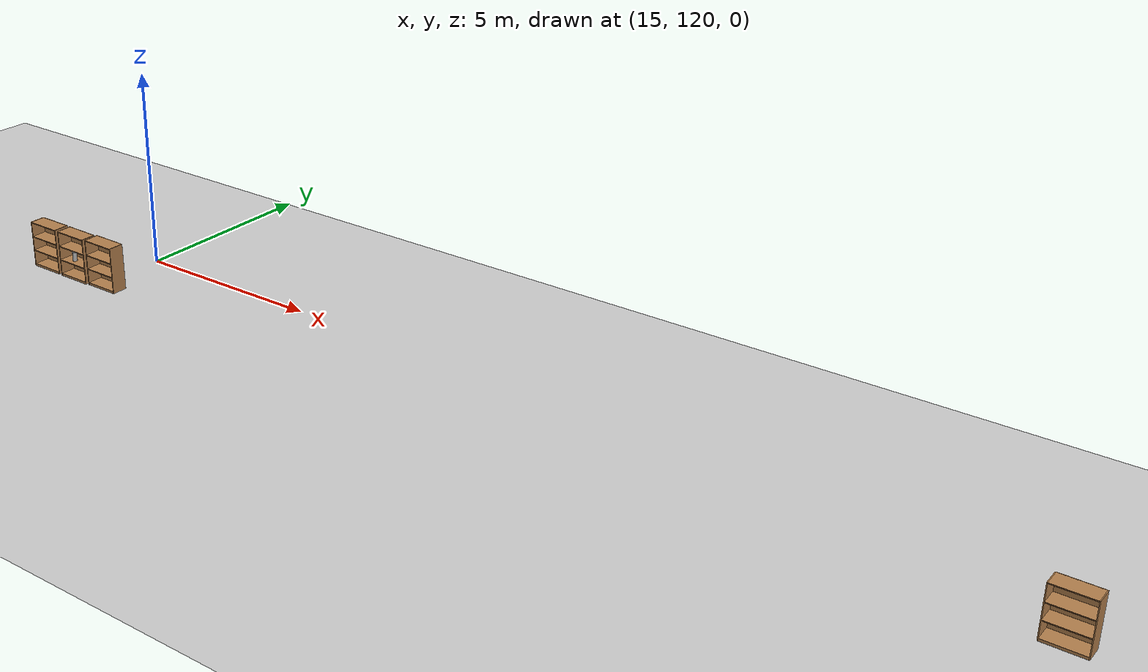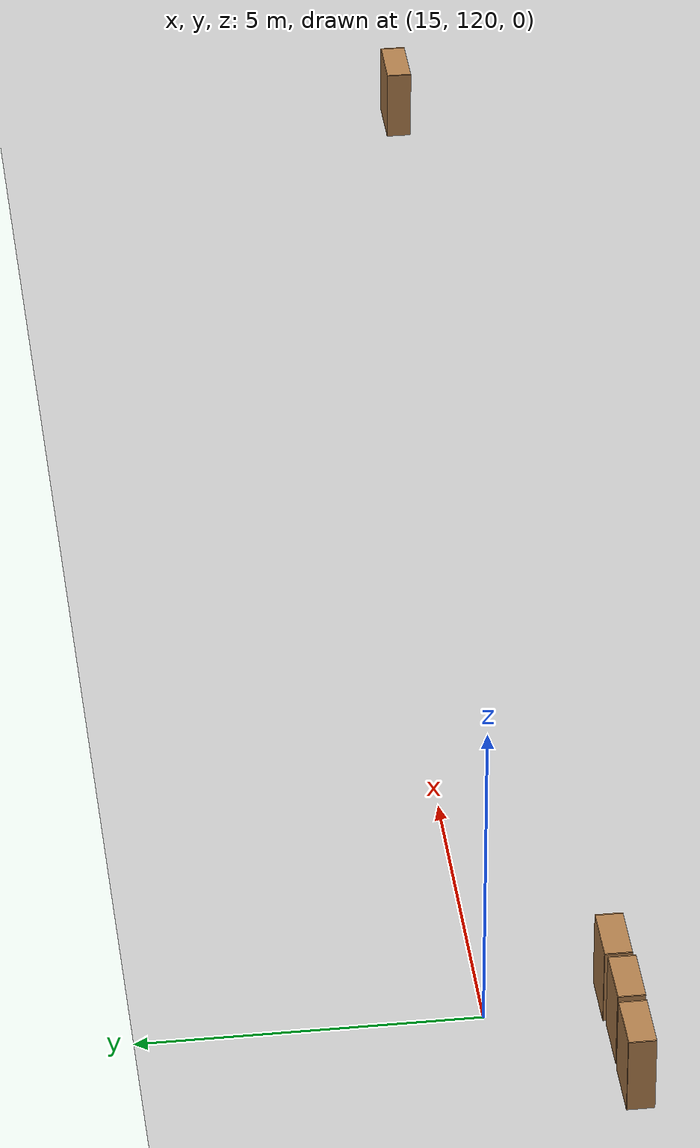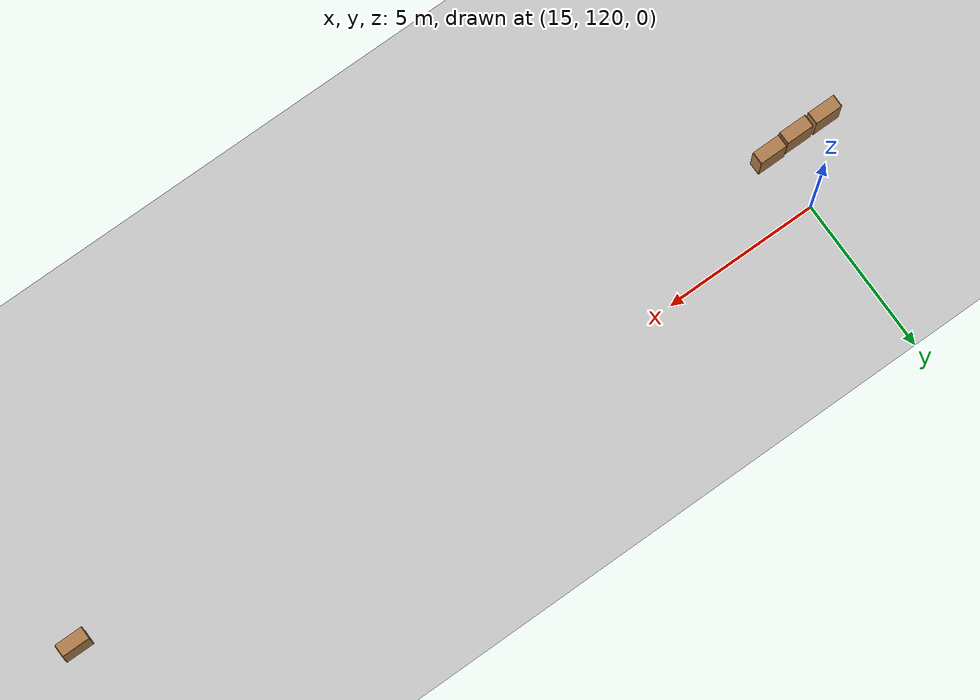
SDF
<sdf version="1.6">
 <world name="testdefault">
  <scene>
   <ambient>0.4 0.4 0.4 1</ambient>
   <background>0.25 0.25 0.25 1</background>
   <shadows>0</shadows>
   <grid>0</grid>
  </scene>
  <physics name="default_physics" default="0" type="ode">
   <ode>
    <solver>
     <type>quick</type>
     <iters>10</iters>
     <sor>1.3</sor>
     <use_dynamic_moi_rescaling>0</use_dynamic_moi_rescaling>
    </solver>
    <constraints>
     <cfm>0</cfm>
     <erp>0.2</erp>
     <contact_max_correcting_vel>100</contact_max_correcting_vel>
     <contact_surface_layer>0.001</contact_surface_layer>
    </constraints>
   </ode>
   <real_time_update_rate>1000.000000</real_time_update_rate>
   <max_step_size>0.001000</max_step_size>
  </physics>
  <model name="plane1_model">
   <pose>10 100 0 0 -0 0</pose>
   <link name="body">
    <collision name="geom_1">
     <geometry><plane><normal>0 0 1</normal><size>130 50</size></plane></geometry>
     <surface>
      <friction><ode><mu>10</mu><mu2>10</mu2><fdir1>0 0 0</fdir1><slip1>0</slip1><slip2>0</slip2></ode></friction>
      <bounce><restitution_coefficient>0</restitution_coefficient><threshold>1e+06</threshold></bounce>
      <contact>
       <ode>
        <soft_cfm>0</soft_cfm>
        <soft_erp>0.2</soft_erp>
        <kp>1e+10</kp>
        <kd>1</kd>
        <max_vel>100</max_vel>
        <min_depth>0.0001</min_depth>
       </ode>
      </contact>
     </surface>
    </collision>
    <visual name="visual_1">
     <geometry><plane><normal>0 0 1</normal><size>130 50</size></plane></geometry>
     <material>
      <script>
       <uri>model://walls/materials/scripts</uri>
       <uri>model://walls/materials/textures</uri>
       <uri>file://repeated.material</uri>
       <name>RepeatedTexture</name>
      </script>
     </material>
     <cast_shadows>0</cast_shadows>
    </visual>
    <velocity_decay><linear>0</linear><angular>0</angular></velocity_decay>
   </link>
   <static>1</static>
  </model>
  <light name="my_light" type="directional">
   <pose>0 0 30 0 -0 0</pose>
   <diffuse>0.9 0.9 0.9 1</diffuse>
   <specular>0.8 0.8 0.8 1</specular>
   <attenuation><range>80</range></attenuation>
   <direction>-0.2 0 -1</direction>
   <cast_shadows>0</cast_shadows>
  </light>
  <gravity>0 0 -9.8</gravity>
  <magnetic_field>6e-06 2.3e-05 -4.2e-05</magnetic_field>
  <atmosphere type="adiabatic"/>
  <audio><device>default</device></audio>
  <spherical_coordinates>
   <surface_model>EARTH_WGS84</surface_model>
   <latitude_deg>0</latitude_deg>
   <longitude_deg>0</longitude_deg>
   <elevation>0</elevation>
   <heading_deg>0</heading_deg>
  </spherical_coordinates>
  <light name="user_point_light_0" type="point">
   <pose>-70.8432 107.425 1 0 -0 0</pose>
   <diffuse>0.5 0.5 0.5 1</diffuse>
   <specular>0.1 0.1 0.1 1</specular>
   <attenuation>
    <range>20</range>
    <constant>0.5</constant>
    <linear>0.01</linear>
    <quadratic>0.001</quadratic>
   </attenuation>
   <cast_shadows>0</cast_shadows>
   <direction>0 0 -1</direction>
  </light>
  <model name="bookshelf">
   <static>1</static>
   <link name="link">
    <inertial><mass>1</mass></inertial>
    <collision name="back">
     <pose>0 0.005 0.6 0 -0 0</pose>
     <geometry><box><size>0.9 0.01 1.2</size></box></geometry>
    </collision>
    <visual name="visual1">
     <pose>0 0.005 0.6 0 -0 0</pose>
     <geometry><box><size>0.9 0.01 1.2</size></box></geometry>
     <material>
      <script><uri>file://media/materials/scripts/gazebo.material</uri><name>Gazebo/Wood</name></script>
     </material>
    </visual>
    <collision name="left_side">
     <pose>0.45 -0.195 0.6 0 -0 0</pose>
     <geometry><box><size>0.02 0.4 1.2</size></box></geometry>
    </collision>
    <visual name="visual2">
     <pose>0.45 -0.195 0.6 0 -0 0</pose>
     <geometry><box><size>0.02 0.4 1.2</size></box></geometry>
     <material>
      <script><uri>file://media/materials/scripts/gazebo.material</uri><name>Gazebo/Wood</name></script>
     </material>
    </visual>
    <collision name="right_side">
     <pose>-0.45 -0.195 0.6 0 -0 0</pose>
     <geometry><box><size>0.02 0.4 1.2</size></box></geometry>
    </collision>
    <visual name="visual3">
     <pose>-0.45 -0.195 0.6 0 -0 0</pose>
     <geometry><box><size>0.02 0.4 1.2</size></box></geometry>
     <material>
      <script><uri>file://media/materials/scripts/gazebo.material</uri><name>Gazebo/Wood</name></script>
     </material>
    </visual>
    <collision name="bottom">
     <pose>0 -0.195 0.03 0 -0 0</pose>
     <geometry><box><size>0.88 0.4 0.06</size></box></geometry>
    </collision>
    <visual name="visual4">
     <pose>0 -0.195 0.03 0 -0 0</pose>
     <geometry><box><size>0.88 0.4 0.06</size></box></geometry>
     <material>
      <script><uri>file://media/materials/scripts/gazebo.material</uri><name>Gazebo/Wood</name></script>
     </material>
    </visual>
    <collision name="top">
     <pose>0 -0.195 1.19 0 -0 0</pose>
     <geometry><box><size>0.88 0.4 0.02</size></box></geometry>
    </collision>
    <visual name="visual5">
     <pose>0 -0.195 1.19 0 -0 0</pose>
     <geometry><box><size>0.88 0.4 0.02</size></box></geometry>
     <material>
      <script><uri>file://media/materials/scripts/gazebo.material</uri><name>Gazebo/Wood</name></script>
     </material>
    </visual>
    <collision name="low_shelf">
     <pose>0 -0.195 0.43 0 -0 0</pose>
     <geometry><box><size>0.88 0.4 0.02</size></box></geometry>
    </collision>
    <visual name="visual6">
     <pose>0 -0.195 0.43 0 -0 0</pose>
     <geometry><box><size>0.88 0.4 0.02</size></box></geometry>
     <material>
      <script><uri>file://media/materials/scripts/gazebo.material</uri><name>Gazebo/Wood</name></script>
     </material>
    </visual>
    <collision name="high_shelf">
     <pose>0 -0.195 0.8 0 -0 0</pose>
     <geometry><box><size>0.88 0.4 0.02</size></box></geometry>
    </collision>
    <visual name="visual7">
     <pose>0 -0.195 0.8 0 -0 0</pose>
     <geometry><box><size>0.88 0.4 0.02</size></box></geometry>
     <material>
      <script><uri>file://media/materials/scripts/gazebo.material</uri><name>Gazebo/Wood</name></script>
     </material>
    </visual>
   </link>
   <pose>39.3934 118.382 0 0 -0 0</pose>
  </model>
  <model name="bookshelf_0">
   <static>1</static>
   <link name="link">
    <inertial><mass>1</mass></inertial>
    <collision name="back">
     <pose>0 0.005 0.6 0 -0 0</pose>
     <geometry><box><size>0.9 0.01 1.2</size></box></geometry>
    </collision>
    <visual name="visual1">
     <pose>0 0.005 0.6 0 -0 0</pose>
     <geometry><box><size>0.9 0.01 1.2</size></box></geometry>
     <material>
      <script><uri>file://media/materials/scripts/gazebo.material</uri><name>Gazebo/Wood</name></script>
     </material>
    </visual>
    <collision name="left_side">
     <pose>0.45 -0.195 0.6 0 -0 0</pose>
     <geometry><box><size>0.02 0.4 1.2</size></box></geometry>
    </collision>
    <visual name="visual2">
     <pose>0.45 -0.195 0.6 0 -0 0</pose>
     <geometry><box><size>0.02 0.4 1.2</size></box></geometry>
     <material>
      <script><uri>file://media/materials/scripts/gazebo.material</uri><name>Gazebo/Wood</name></script>
     </material>
    </visual>
    <collision name="right_side">
     <pose>-0.45 -0.195 0.6 0 -0 0</pose>
     <geometry><box><size>0.02 0.4 1.2</size></box></geometry>
    </collision>
    <visual name="visual3">
     <pose>-0.45 -0.195 0.6 0 -0 0</pose>
     <geometry><box><size>0.02 0.4 1.2</size></box></geometry>
     <material>
      <script><uri>file://media/materials/scripts/gazebo.material</uri><name>Gazebo/Wood</name></script>
     </material>
    </visual>
    <collision name="bottom">
     <pose>0 -0.195 0.03 0 -0 0</pose>
     <geometry><box><size>0.88 0.4 0.06</size></box></geometry>
    </collision>
    <visual name="visual4">
     <pose>0 -0.195 0.03 0 -0 0</pose>
     <geometry><box><size>0.88 0.4 0.06</size></box></geometry>
     <material>
      <script><uri>file://media/materials/scripts/gazebo.material</uri><name>Gazebo/Wood</name></script>
     </material>
    </visual>
    <collision name="top">
     <pose>0 -0.195 1.19 0 -0 0</pose>
     <geometry><box><size>0.88 0.4 0.02</size></box></geometry>
    </collision>
    <visual name="visual5">
     <pose>0 -0.195 1.19 0 -0 0</pose>
     <geometry><box><size>0.88 0.4 0.02</size></box></geometry>
     <material>
      <script><uri>file://media/materials/scripts/gazebo.material</uri><name>Gazebo/Wood</name></script>
     </material>
    </visual>
    <collision name="low_shelf">
     <pose>0 -0.195 0.43 0 -0 0</pose>
     <geometry><box><size>0.88 0.4 0.02</size></box></geometry>
    </collision>
    <visual name="visual6">
     <pose>0 -0.195 0.43 0 -0 0</pose>
     <geometry><box><size>0.88 0.4 0.02</size></box></geometry>
     <material>
      <script><uri>file://media/materials/scripts/gazebo.material</uri><name>Gazebo/Wood</name></script>
     </material>
    </visual>
    <collision name="high_shelf">
     <pose>0 -0.195 0.8 0 -0 0</pose>
     <geometry><box><size>0.88 0.4 0.02</size></box></geometry>
    </collision>
    <visual name="visual7">
     <pose>0 -0.195 0.8 0 -0 0</pose>
     <geometry><box><size>0.88 0.4 0.02</size></box></geometry>
     <material>
      <script><uri>file://media/materials/scripts/gazebo.material</uri><name>Gazebo/Wood</name></script>
     </material>
    </visual>
   </link>
   <pose>15.1876 118.328 0 0 -0 0</pose>
  </model>
  <model name="bookshelf_1">
   <static>1</static>
   <link name="link">
    <inertial><mass>1</mass></inertial>
    <collision name="back">
     <pose>0 0.005 0.6 0 -0 0</pose>
     <geometry><box><size>0.9 0.01 1.2</size></box></geometry>
    </collision>
    <visual name="visual1">
     <pose>0 0.005 0.6 0 -0 0</pose>
     <geometry><box><size>0.9 0.01 1.2</size></box></geometry>
     <material>
      <script><uri>file://media/materials/scripts/gazebo.material</uri><name>Gazebo/Wood</name></script>
     </material>
    </visual>
    <collision name="left_side">
     <pose>0.45 -0.195 0.6 0 -0 0</pose>
     <geometry><box><size>0.02 0.4 1.2</size></box></geometry>
    </collision>
    <visual name="visual2">
     <pose>0.45 -0.195 0.6 0 -0 0</pose>
     <geometry><box><size>0.02 0.4 1.2</size></box></geometry>
     <material>
      <script><uri>file://media/materials/scripts/gazebo.material</uri><name>Gazebo/Wood</name></script>
     </material>
    </visual>
    <collision name="right_side">
     <pose>-0.45 -0.195 0.6 0 -0 0</pose>
     <geometry><box><size>0.02 0.4 1.2</size></box></geometry>
    </collision>
    <visual name="visual3">
     <pose>-0.45 -0.195 0.6 0 -0 0</pose>
     <geometry><box><size>0.02 0.4 1.2</size></box></geometry>
     <material>
      <script><uri>file://media/materials/scripts/gazebo.material</uri><name>Gazebo/Wood</name></script>
     </material>
    </visual>
    <collision name="bottom">
     <pose>0 -0.195 0.03 0 -0 0</pose>
     <geometry><box><size>0.88 0.4 0.06</size></box></geometry>
    </collision>
    <visual name="visual4">
     <pose>0 -0.195 0.03 0 -0 0</pose>
     <geometry><box><size>0.88 0.4 0.06</size></box></geometry>
     <material>
      <script><uri>file://media/materials/scripts/gazebo.material</uri><name>Gazebo/Wood</name></script>
     </material>
    </visual>
    <collision name="top">
     <pose>0 -0.195 1.19 0 -0 0</pose>
     <geometry><box><size>0.88 0.4 0.02</size></box></geometry>
    </collision>
    <visual name="visual5">
     <pose>0 -0.195 1.19 0 -0 0</pose>
     <geometry><box><size>0.88 0.4 0.02</size></box></geometry>
     <material>
      <script><uri>file://media/materials/scripts/gazebo.material</uri><name>Gazebo/Wood</name></script>
     </material>
    </visual>
    <collision name="low_shelf">
     <pose>0 -0.195 0.43 0 -0 0</pose>
     <geometry><box><size>0.88 0.4 0.02</size></box></geometry>
    </collision>
    <visual name="visual6">
     <pose>0 -0.195 0.43 0 -0 0</pose>
     <geometry><box><size>0.88 0.4 0.02</size></box></geometry>
     <material>
      <script><uri>file://media/materials/scripts/gazebo.material</uri><name>Gazebo/Wood</name></script>
     </material>
    </visual>
    <collision name="high_shelf">
     <pose>0 -0.195 0.8 0 -0 0</pose>
     <geometry><box><size>0.88 0.4 0.02</size></box></geometry>
    </collision>
    <visual name="visual7">
     <pose>0 -0.195 0.8 0 -0 0</pose>
     <geometry><box><size>0.88 0.4 0.02</size></box></geometry>
     <material>
      <script><uri>file://media/materials/scripts/gazebo.material</uri><name>Gazebo/Wood</name></script>
     </material>
    </visual>
   </link>
   <pose>14.2167 118.291 0 0 -0 0</pose>
  </model>
  <model name="bookshelf_2">
   <static>1</static>
   <link name="link">
    <inertial><mass>1</mass></inertial>
    <collision name="back">
     <pose>0 0.005 0.6 0 -0 0</pose>
     <geometry><box><size>0.9 0.01 1.2</size></box></geometry>
    </collision>
    <visual name="visual1">
     <pose>0 0.005 0.6 0 -0 0</pose>
     <geometry><box><size>0.9 0.01 1.2</size></box></geometry>
     <material>
      <script><uri>file://media/materials/scripts/gazebo.material</uri><name>Gazebo/Wood</name></script>
     </material>
    </visual>
    <collision name="left_side">
     <pose>0.45 -0.195 0.6 0 -0 0</pose>
     <geometry><box><size>0.02 0.4 1.2</size></box></geometry>
    </collision>
    <visual name="visual2">
     <pose>0.45 -0.195 0.6 0 -0 0</pose>
     <geometry><box><size>0.02 0.4 1.2</size></box></geometry>
     <material>
      <script><uri>file://media/materials/scripts/gazebo.material</uri><name>Gazebo/Wood</name></script>
     </material>
    </visual>
    <collision name="right_side">
     <pose>-0.45 -0.195 0.6 0 -0 0</pose>
     <geometry><box><size>0.02 0.4 1.2</size></box></geometry>
    </collision>
    <visual name="visual3">
     <pose>-0.45 -0.195 0.6 0 -0 0</pose>
     <geometry><box><size>0.02 0.4 1.2</size></box></geometry>
     <material>
      <script><uri>file://media/materials/scripts/gazebo.material</uri><name>Gazebo/Wood</name></script>
     </material>
    </visual>
    <collision name="bottom">
     <pose>0 -0.195 0.03 0 -0 0</pose>
     <geometry><box><size>0.88 0.4 0.06</size></box></geometry>
    </collision>
    <visual name="visual4">
     <pose>0 -0.195 0.03 0 -0 0</pose>
     <geometry><box><size>0.88 0.4 0.06</size></box></geometry>
     <material>
      <script><uri>file://media/materials/scripts/gazebo.material</uri><name>Gazebo/Wood</name></script>
     </material>
    </visual>
    <collision name="top">
     <pose>0 -0.195 1.19 0 -0 0</pose>
     <geometry><box><size>0.88 0.4 0.02</size></box></geometry>
    </collision>
    <visual name="visual5">
     <pose>0 -0.195 1.19 0 -0 0</pose>
     <geometry><box><size>0.88 0.4 0.02</size></box></geometry>
     <material>
      <script><uri>file://media/materials/scripts/gazebo.material</uri><name>Gazebo/Wood</name></script>
     </material>
    </visual>
    <collision name="low_shelf">
     <pose>0 -0.195 0.43 0 -0 0</pose>
     <geometry><box><size>0.88 0.4 0.02</size></box></geometry>
    </collision>
    <visual name="visual6">
     <pose>0 -0.195 0.43 0 -0 0</pose>
     <geometry><box><size>0.88 0.4 0.02</size></box></geometry>
     <material>
      <script><uri>file://media/materials/scripts/gazebo.material</uri><name>Gazebo/Wood</name></script>
     </material>
    </visual>
    <collision name="high_shelf">
     <pose>0 -0.195 0.8 0 -0 0</pose>
     <geometry><box><size>0.88 0.4 0.02</size></box></geometry>
    </collision>
    <visual name="visual7">
     <pose>0 -0.195 0.8 0 -0 0</pose>
     <geometry><box><size>0.88 0.4 0.02</size></box></geometry>
     <material>
      <script><uri>file://media/materials/scripts/gazebo.material</uri><name>Gazebo/Wood</name></script>
     </material>
    </visual>
   </link>
   <pose>13.2013 118.296 0 0 -0 0</pose>
  </model>
  <model name="beer">
   <link name="link">
    <pose>0 0 0.115 0 -0 0</pose>
    <inertial>
     <mass>0.39</mass>
     <inertia><ixx>0.00058</ixx><ixy>0</ixy><ixz>0</ixz><iyy>0.00058</iyy><iyz>0</iyz><izz>0.00019</izz></inertia>
    </inertial>
    <collision name="collision">
     <geometry><cylinder><radius>0.055</radius><length>0.23</length></cylinder></geometry>
    </collision>
    <visual name="visual">
     <geometry><cylinder><radius>0.055</radius><length>0.23</length></cylinder></geometry>
     <material>
      <script>
       <uri>model://beer/materials/scripts</uri>
       <uri>model://beer/materials/textures</uri>
       <name>Beer/Diffuse</name>
      </script>
     </material>
    </visual>
   </link>
   <pose>14.1183 118.077 0.439992 1.4e-05 1.1e-05 -0.056698</pose>
  </model>
  <light name="user_point_light_1" type="point">
   <pose>-5.95641 107.327 1 0 -0 0</pose>
   <diffuse>0.5 0.5 0.5 1</diffuse>
   <specular>0.1 0.1 0.1 1</specular>
   <attenuation>
    <range>20</range>
    <constant>0.5</constant>
    <linear>0.01</linear>
    <quadratic>0.001</quadratic>
   </attenuation>
   <cast_shadows>0</cast_shadows>
   <direction>0 0 -1</direction>
  </light>
 </world>
</sdf>
